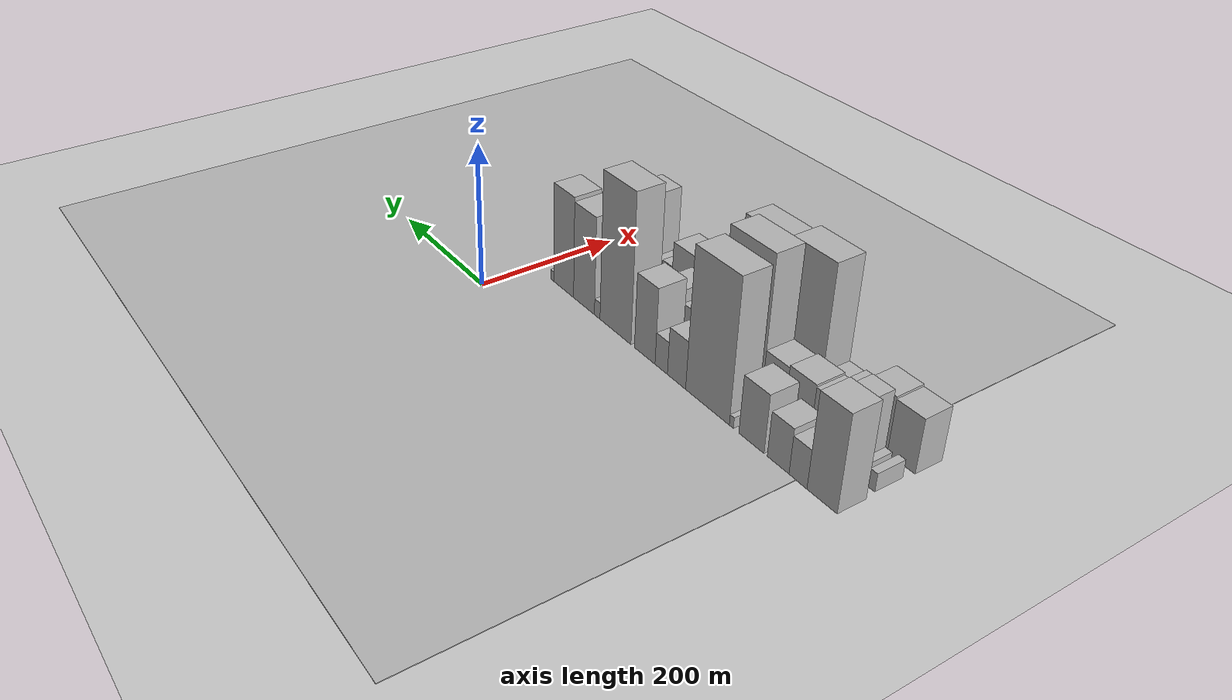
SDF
<sdf version="1.6">
 <world name="default">
  <include><name>ground_plane_1</name><uri>model://HANNAS_ground_plane</uri></include>
  <include>
   <name>ground_plane_2</name>
   <uri>model://HANNAS_ground_plane</uri>
   <pose>100 0 0  0 0 0</pose>
  </include>
  <model name="building_1">
   <static>1</static>
   <pose>100.0000 -538.0653 0 0.000000 0.000000 0.000000</pose>
   <link name="link">
    <pose>0 0 63.00 0 0 0</pose>
    <collision name="collision"><geometry><box><size>40.0000 43.8694 126.0000</size></box></geometry></collision>
    <visual name="visual">
     <cast_shadows>0</cast_shadows>
     <geometry><box><size>40.0000 43.8694 126.0000</size></box></geometry>
     <material>
      <script>
       <uri>model://HANNAS_wall/materials/scripts</uri>
       <uri>model://HANNAS_wall/materials/textures</uri>
       <name>vrc/HANNAS_wall</name>
      </script>
     </material>
    </visual>
   </link>
  </model>
  <model name="building_2">
   <static>1</static>
   <pose>100.0000 -502.6067 0 0.000000 0.000000 0.000000</pose>
   <link name="link">
    <pose>0 0 25.50 0 0 0</pose>
    <collision name="collision"><geometry><box><size>40.0000 27.0477 51.0000</size></box></geometry></collision>
    <visual name="visual">
     <cast_shadows>0</cast_shadows>
     <geometry><box><size>40.0000 27.0477 51.0000</size></box></geometry>
     <material>
      <script>
       <uri>model://HANNAS_wall/materials/scripts</uri>
       <uri>model://HANNAS_wall/materials/textures</uri>
       <name>vrc/HANNAS_wall</name>
      </script>
     </material>
    </visual>
   </link>
  </model>
  <model name="building_3">
   <static>1</static>
   <pose>100.0000 -472.1858 0 0.000000 0.000000 0.000000</pose>
   <link name="link">
    <pose>0 0 30.00 0 0 0</pose>
    <collision name="collision"><geometry><box><size>40.0000 33.7942 60.0000</size></box></geometry></collision>
    <visual name="visual">
     <cast_shadows>0</cast_shadows>
     <geometry><box><size>40.0000 33.7942 60.0000</size></box></geometry>
     <material>
      <script>
       <uri>model://HANNAS_wall/materials/scripts</uri>
       <uri>model://HANNAS_wall/materials/textures</uri>
       <name>vrc/HANNAS_wall</name>
      </script>
     </material>
    </visual>
   </link>
  </model>
  <model name="building_4">
   <static>1</static>
   <pose>100.0000 -429.7920 0 0.000000 0.000000 0.000000</pose>
   <link name="link">
    <pose>0 0 39.00 0 0 0</pose>
    <collision name="collision"><geometry><box><size>40.0000 40.9933 78.0000</size></box></geometry></collision>
    <visual name="visual">
     <cast_shadows>0</cast_shadows>
     <geometry><box><size>40.0000 40.9933 78.0000</size></box></geometry>
     <material>
      <script>
       <uri>model://HANNAS_wall/materials/scripts</uri>
       <uri>model://HANNAS_wall/materials/textures</uri>
       <name>vrc/HANNAS_wall</name>
      </script>
     </material>
    </visual>
   </link>
  </model>
  <model name="building_5">
   <static>1</static>
   <pose>100.0000 -396.8472 0 0.000000 0.000000 0.000000</pose>
   <link name="link">
    <pose>0 0 7.50 0 0 0</pose>
    <collision name="collision"><geometry><box><size>40.0000 6.8963 15.0000</size></box></geometry></collision>
    <visual name="visual">
     <cast_shadows>0</cast_shadows>
     <geometry><box><size>40.0000 6.8963 15.0000</size></box></geometry>
     <material>
      <script>
       <uri>model://HANNAS_wall/materials/scripts</uri>
       <uri>model://HANNAS_wall/materials/textures</uri>
       <name>vrc/HANNAS_wall</name>
      </script>
     </material>
    </visual>
   </link>
  </model>
  <model name="building_6">
   <static>1</static>
   <pose>100.0000 -355.0737 0 0.000000 0.000000 0.000000</pose>
   <link name="link">
    <pose>0 0 96.00 0 0 0</pose>
    <collision name="collision"><geometry><box><size>40.0000 76.6506 192.0000</size></box></geometry></collision>
    <visual name="visual">
     <cast_shadows>0</cast_shadows>
     <geometry><box><size>40.0000 76.6506 192.0000</size></box></geometry>
     <material>
      <script>
       <uri>model://HANNAS_wall/materials/scripts</uri>
       <uri>model://HANNAS_wall/materials/textures</uri>
       <name>vrc/HANNAS_wall</name>
      </script>
     </material>
    </visual>
   </link>
  </model>
  <model name="building_7">
   <static>1</static>
   <pose>100.0000 -299.8368 0 0.000000 0.000000 0.000000</pose>
   <link name="link">
    <pose>0 0 33.00 0 0 0</pose>
    <collision name="collision"><geometry><box><size>40.0000 33.8232 66.0000</size></box></geometry></collision>
    <visual name="visual">
     <cast_shadows>0</cast_shadows>
     <geometry><box><size>40.0000 33.8232 66.0000</size></box></geometry>
     <material>
      <script>
       <uri>model://HANNAS_wall/materials/scripts</uri>
       <uri>model://HANNAS_wall/materials/textures</uri>
       <name>vrc/HANNAS_wall</name>
      </script>
     </material>
    </visual>
   </link>
  </model>
  <model name="building_8">
   <static>1</static>
   <pose>100.0000 -271.1607 0 0.000000 0.000000 0.000000</pose>
   <link name="link">
    <pose>0 0 22.50 0 0 0</pose>
    <collision name="collision"><geometry><box><size>40.0000 23.5292 45.0000</size></box></geometry></collision>
    <visual name="visual">
     <cast_shadows>0</cast_shadows>
     <geometry><box><size>40.0000 23.5292 45.0000</size></box></geometry>
     <material>
      <script>
       <uri>model://HANNAS_wall/materials/scripts</uri>
       <uri>model://HANNAS_wall/materials/textures</uri>
       <name>vrc/HANNAS_wall</name>
      </script>
     </material>
    </visual>
   </link>
  </model>
  <model name="building_9">
   <static>1</static>
   <pose>100.0000 -239.2058 0 0.000000 0.000000 0.000000</pose>
   <link name="link">
    <pose>0 0 52.50 0 0 0</pose>
    <collision name="collision"><geometry><box><size>40.0000 40.3806 105.0000</size></box></geometry></collision>
    <visual name="visual">
     <cast_shadows>0</cast_shadows>
     <geometry><box><size>40.0000 40.3806 105.0000</size></box></geometry>
     <material>
      <script>
       <uri>model://HANNAS_wall/materials/scripts</uri>
       <uri>model://HANNAS_wall/materials/textures</uri>
       <name>vrc/HANNAS_wall</name>
      </script>
     </material>
    </visual>
   </link>
  </model>
  <model name="building_10">
   <static>1</static>
   <pose>100.0000 -179.8316 0 0.000000 0.000000 0.000000</pose>
   <link name="link">
    <pose>0 0 103.50 0 0 0</pose>
    <collision name="collision"><geometry><box><size>40.0000 64.3677 207.0000</size></box></geometry></collision>
    <visual name="visual">
     <cast_shadows>0</cast_shadows>
     <geometry><box><size>40.0000 64.3677 207.0000</size></box></geometry>
     <material>
      <script>
       <uri>model://HANNAS_wall/materials/scripts</uri>
       <uri>model://HANNAS_wall/materials/textures</uri>
       <name>vrc/HANNAS_wall</name>
      </script>
     </material>
    </visual>
   </link>
  </model>
  <model name="building_11">
   <static>1</static>
   <pose>100.0000 -141.6999 0 0.000000 0.000000 0.000000</pose>
   <link name="link">
    <pose>0 0 12.00 0 0 0</pose>
    <collision name="collision"><geometry><box><size>40.0000 11.8957 24.0000</size></box></geometry></collision>
    <visual name="visual">
     <cast_shadows>0</cast_shadows>
     <geometry><box><size>40.0000 11.8957 24.0000</size></box></geometry>
     <material>
      <script>
       <uri>model://HANNAS_wall/materials/scripts</uri>
       <uri>model://HANNAS_wall/materials/textures</uri>
       <name>vrc/HANNAS_wall</name>
      </script>
     </material>
    </visual>
   </link>
  </model>
  <model name="building_12">
   <static>1</static>
   <pose>100.0000 -112.7163 0 0.000000 0.000000 0.000000</pose>
   <link name="link">
    <pose>0 0 69.00 0 0 0</pose>
    <collision name="collision"><geometry><box><size>40.0000 46.0715 138.0000</size></box></geometry></collision>
    <visual name="visual">
     <cast_shadows>0</cast_shadows>
     <geometry><box><size>40.0000 46.0715 138.0000</size></box></geometry>
     <material>
      <script>
       <uri>model://HANNAS_wall/materials/scripts</uri>
       <uri>model://HANNAS_wall/materials/textures</uri>
       <name>vrc/HANNAS_wall</name>
      </script>
     </material>
    </visual>
   </link>
  </model>
  <model name="building_13">
   <static>1</static>
   <pose>100.0000 -67.0295 0 0.000000 0.000000 0.000000</pose>
   <link name="link">
    <pose>0 0 72.00 0 0 0</pose>
    <collision name="collision"><geometry><box><size>40.0000 45.3021 144.0000</size></box></geometry></collision>
    <visual name="visual">
     <cast_shadows>0</cast_shadows>
     <geometry><box><size>40.0000 45.3021 144.0000</size></box></geometry>
     <material>
      <script>
       <uri>model://HANNAS_wall/materials/scripts</uri>
       <uri>model://HANNAS_wall/materials/textures</uri>
       <name>vrc/HANNAS_wall</name>
      </script>
     </material>
    </visual>
   </link>
  </model>
  <model name="building_14">
   <static>1</static>
   <pose>100.0000 -40.6850 0 0.000000 0.000000 0.000000</pose>
   <link name="link">
    <pose>0 0 7.50 0 0 0</pose>
    <collision name="collision"><geometry><box><size>40.0000 7.3868 15.0000</size></box></geometry></collision>
    <visual name="visual">
     <cast_shadows>0</cast_shadows>
     <geometry><box><size>40.0000 7.3868 15.0000</size></box></geometry>
     <material>
      <script>
       <uri>model://HANNAS_wall/materials/scripts</uri>
       <uri>model://HANNAS_wall/materials/textures</uri>
       <name>vrc/HANNAS_wall</name>
      </script>
     </material>
    </visual>
   </link>
  </model>
  <model name="building_35">
   <static>1</static>
   <pose>155.0000 -551.8462 0 0.000000 0.000000 0.000000</pose>
   <link name="link">
    <pose>0 0 12.00 0 0 0</pose>
    <collision name="collision"><geometry><box><size>40.0000 10.3077 24.0000</size></box></geometry></collision>
    <visual name="visual">
     <cast_shadows>0</cast_shadows>
     <geometry><box><size>40.0000 10.3077 24.0000</size></box></geometry>
     <material>
      <script>
       <uri>model://HANNAS_wall/materials/scripts</uri>
       <uri>model://HANNAS_wall/materials/textures</uri>
       <name>vrc/HANNAS_wall</name>
      </script>
     </material>
    </visual>
   </link>
  </model>
  <model name="building_36">
   <static>1</static>
   <pose>155.0000 -533.7360 0 0.000000 0.000000 0.000000</pose>
   <link name="link">
    <pose>0 0 10.50 0 0 0</pose>
    <collision name="collision"><geometry><box><size>40.0000 9.9126 21.0000</size></box></geometry></collision>
    <visual name="visual">
     <cast_shadows>0</cast_shadows>
     <geometry><box><size>40.0000 9.9126 21.0000</size></box></geometry>
     <material>
      <script>
       <uri>model://HANNAS_wall/materials/scripts</uri>
       <uri>model://HANNAS_wall/materials/textures</uri>
       <name>vrc/HANNAS_wall</name>
      </script>
     </material>
    </visual>
   </link>
  </model>
  <model name="building_37">
   <static>1</static>
   <pose>155.0000 -513.0303 0 0.000000 0.000000 0.000000</pose>
   <link name="link">
    <pose>0 0 48.00 0 0 0</pose>
    <collision name="collision"><geometry><box><size>40.0000 31.4988 96.0000</size></box></geometry></collision>
    <visual name="visual">
     <cast_shadows>0</cast_shadows>
     <geometry><box><size>40.0000 31.4988 96.0000</size></box></geometry>
     <material>
      <script>
       <uri>model://HANNAS_wall/materials/scripts</uri>
       <uri>model://HANNAS_wall/materials/textures</uri>
       <name>vrc/HANNAS_wall</name>
      </script>
     </material>
    </visual>
   </link>
  </model>
  <model name="building_38">
   <static>1</static>
   <pose>155.0000 -479.1064 0 0.000000 0.000000 0.000000</pose>
   <link name="link">
    <pose>0 0 36.00 0 0 0</pose>
    <collision name="collision"><geometry><box><size>40.0000 36.3490 72.0000</size></box></geometry></collision>
    <visual name="visual">
     <cast_shadows>0</cast_shadows>
     <geometry><box><size>40.0000 36.3490 72.0000</size></box></geometry>
     <material>
      <script>
       <uri>model://HANNAS_wall/materials/scripts</uri>
       <uri>model://HANNAS_wall/materials/textures</uri>
       <name>vrc/HANNAS_wall</name>
      </script>
     </material>
    </visual>
   </link>
  </model>
  <model name="building_39">
   <static>1</static>
   <pose>155.0000 -440.3385 0 0.000000 0.000000 0.000000</pose>
   <link name="link">
    <pose>0 0 37.50 0 0 0</pose>
    <collision name="collision"><geometry><box><size>40.0000 41.1868 75.0000</size></box></geometry></collision>
    <visual name="visual">
     <cast_shadows>0</cast_shadows>
     <geometry><box><size>40.0000 41.1868 75.0000</size></box></geometry>
     <material>
      <script>
       <uri>model://HANNAS_wall/materials/scripts</uri>
       <uri>model://HANNAS_wall/materials/textures</uri>
       <name>vrc/HANNAS_wall</name>
      </script>
     </material>
    </visual>
   </link>
  </model>
  <model name="building_40">
   <static>1</static>
   <pose>155.0000 -400.9621 0 0.000000 0.000000 0.000000</pose>
   <link name="link">
    <pose>0 0 36.00 0 0 0</pose>
    <collision name="collision"><geometry><box><size>40.0000 37.5661 72.0000</size></box></geometry></collision>
    <visual name="visual">
     <cast_shadows>0</cast_shadows>
     <geometry><box><size>40.0000 37.5661 72.0000</size></box></geometry>
     <material>
      <script>
       <uri>model://HANNAS_wall/materials/scripts</uri>
       <uri>model://HANNAS_wall/materials/textures</uri>
       <name>vrc/HANNAS_wall</name>
      </script>
     </material>
    </visual>
   </link>
  </model>
  <model name="building_41">
   <static>1</static>
   <pose>155.0000 -345.1569 0 0.000000 0.000000 0.000000</pose>
   <link name="link">
    <pose>0 0 97.50 0 0 0</pose>
    <collision name="collision"><geometry><box><size>40.0000 74.0444 195.0000</size></box></geometry></collision>
    <visual name="visual">
     <cast_shadows>0</cast_shadows>
     <geometry><box><size>40.0000 74.0444 195.0000</size></box></geometry>
     <material>
      <script>
       <uri>model://HANNAS_wall/materials/scripts</uri>
       <uri>model://HANNAS_wall/materials/textures</uri>
       <name>vrc/HANNAS_wall</name>
      </script>
     </material>
    </visual>
   </link>
  </model>
  <model name="building_42">
   <static>1</static>
   <pose>155.0000 -287.4145 0 0.000000 0.000000 0.000000</pose>
   <link name="link">
    <pose>0 0 37.50 0 0 0</pose>
    <collision name="collision"><geometry><box><size>40.0000 41.4403 75.0000</size></box></geometry></collision>
    <visual name="visual">
     <cast_shadows>0</cast_shadows>
     <geometry><box><size>40.0000 41.4403 75.0000</size></box></geometry>
     <material>
      <script>
       <uri>model://HANNAS_wall/materials/scripts</uri>
       <uri>model://HANNAS_wall/materials/textures</uri>
       <name>vrc/HANNAS_wall</name>
      </script>
     </material>
    </visual>
   </link>
  </model>
  <model name="building_43">
   <static>1</static>
   <pose>155.0000 -252.5107 0 0.000000 0.000000 0.000000</pose>
   <link name="link">
    <pose>0 0 27.00 0 0 0</pose>
    <collision name="collision"><geometry><box><size>40.0000 28.3674 54.0000</size></box></geometry></collision>
    <visual name="visual">
     <cast_shadows>0</cast_shadows>
     <geometry><box><size>40.0000 28.3674 54.0000</size></box></geometry>
     <material>
      <script>
       <uri>model://HANNAS_wall/materials/scripts</uri>
       <uri>model://HANNAS_wall/materials/textures</uri>
       <name>vrc/HANNAS_wall</name>
      </script>
     </material>
    </visual>
   </link>
  </model>
  <model name="building_44">
   <static>1</static>
   <pose>155.0000 -220.3264 0 0.000000 0.000000 0.000000</pose>
   <link name="link">
    <pose>0 0 36.00 0 0 0</pose>
    <collision name="collision"><geometry><box><size>40.0000 36.0011 72.0000</size></box></geometry></collision>
    <visual name="visual">
     <cast_shadows>0</cast_shadows>
     <geometry><box><size>40.0000 36.0011 72.0000</size></box></geometry>
     <material>
      <script>
       <uri>model://HANNAS_wall/materials/scripts</uri>
       <uri>model://HANNAS_wall/materials/textures</uri>
       <name>vrc/HANNAS_wall</name>
      </script>
     </material>
    </visual>
   </link>
  </model>
  <model name="building_45">
   <static>1</static>
   <pose>155.0000 -191.4510 0 0.000000 0.000000 0.000000</pose>
   <link name="link">
    <pose>0 0 19.50 0 0 0</pose>
    <collision name="collision"><geometry><box><size>40.0000 21.7497 39.0000</size></box></geometry></collision>
    <visual name="visual">
     <cast_shadows>0</cast_shadows>
     <geometry><box><size>40.0000 21.7497 39.0000</size></box></geometry>
     <material>
      <script>
       <uri>model://HANNAS_wall/materials/scripts</uri>
       <uri>model://HANNAS_wall/materials/textures</uri>
       <name>vrc/HANNAS_wall</name>
      </script>
     </material>
    </visual>
   </link>
  </model>
  <model name="building_46">
   <static>1</static>
   <pose>155.0000 -164.6958 0 0.000000 0.000000 0.000000</pose>
   <link name="link">
    <pose>0 0 22.50 0 0 0</pose>
    <collision name="collision"><geometry><box><size>40.0000 25.7607 45.0000</size></box></geometry></collision>
    <visual name="visual">
     <cast_shadows>0</cast_shadows>
     <geometry><box><size>40.0000 25.7607 45.0000</size></box></geometry>
     <material>
      <script>
       <uri>model://HANNAS_wall/materials/scripts</uri>
       <uri>model://HANNAS_wall/materials/textures</uri>
       <name>vrc/HANNAS_wall</name>
      </script>
     </material>
    </visual>
   </link>
  </model>
  <model name="building_47">
   <static>1</static>
   <pose>155.0000 -140.7426 0 0.000000 0.000000 0.000000</pose>
   <link name="link">
    <pose>0 0 21.00 0 0 0</pose>
    <collision name="collision"><geometry><box><size>40.0000 22.1457 42.0000</size></box></geometry></collision>
    <visual name="visual">
     <cast_shadows>0</cast_shadows>
     <geometry><box><size>40.0000 22.1457 42.0000</size></box></geometry>
     <material>
      <script>
       <uri>model://HANNAS_wall/materials/scripts</uri>
       <uri>model://HANNAS_wall/materials/textures</uri>
       <name>vrc/HANNAS_wall</name>
      </script>
     </material>
    </visual>
   </link>
  </model>
  <model name="building_48">
   <static>1</static>
   <pose>155.0000 -106.2939 0 0.000000 0.000000 0.000000</pose>
   <link name="link">
    <pose>0 0 66.00 0 0 0</pose>
    <collision name="collision"><geometry><box><size>40.0000 46.7518 132.0000</size></box></geometry></collision>
    <visual name="visual">
     <cast_shadows>0</cast_shadows>
     <geometry><box><size>40.0000 46.7518 132.0000</size></box></geometry>
     <material>
      <script>
       <uri>model://HANNAS_wall/materials/scripts</uri>
       <uri>model://HANNAS_wall/materials/textures</uri>
       <name>vrc/HANNAS_wall</name>
      </script>
     </material>
    </visual>
   </link>
  </model>
  <model name="building_49">
   <static>1</static>
   <pose>155.0000 -59.1420 0 0.000000 0.000000 0.000000</pose>
   <link name="link">
    <pose>0 0 43.50 0 0 0</pose>
    <collision name="collision"><geometry><box><size>40.0000 47.5520 87.0000</size></box></geometry></collision>
    <visual name="visual">
     <cast_shadows>0</cast_shadows>
     <geometry><box><size>40.0000 47.5520 87.0000</size></box></geometry>
     <material>
      <script>
       <uri>model://HANNAS_wall/materials/scripts</uri>
       <uri>model://HANNAS_wall/materials/textures</uri>
       <name>vrc/HANNAS_wall</name>
      </script>
     </material>
    </visual>
   </link>
  </model>
  <model name="building_50">
   <static>1</static>
   <pose>155.0000 -22.7930 0 0.000000 0.000000 0.000000</pose>
   <link name="link">
    <pose>0 0 22.50 0 0 0</pose>
    <collision name="collision"><geometry><box><size>40.0000 25.1459 45.0000</size></box></geometry></collision>
    <visual name="visual">
     <cast_shadows>0</cast_shadows>
     <geometry><box><size>40.0000 25.1459 45.0000</size></box></geometry>
     <material>
      <script>
       <uri>model://HANNAS_wall/materials/scripts</uri>
       <uri>model://HANNAS_wall/materials/textures</uri>
       <name>vrc/HANNAS_wall</name>
      </script>
     </material>
    </visual>
   </link>
  </model>
  <model name="building_51">
   <static>1</static>
   <pose>155.0000 -1.5089 0 0.000000 0.000000 0.000000</pose>
   <link name="link">
    <pose>0 0 15.00 0 0 0</pose>
    <collision name="collision"><geometry><box><size>40.0000 17.4223 30.0000</size></box></geometry></collision>
    <visual name="visual">
     <cast_shadows>0</cast_shadows>
     <geometry><box><size>40.0000 17.4223 30.0000</size></box></geometry>
     <material>
      <script>
       <uri>model://HANNAS_wall/materials/scripts</uri>
       <uri>model://HANNAS_wall/materials/textures</uri>
       <name>vrc/HANNAS_wall</name>
      </script>
     </material>
    </visual>
   </link>
  </model>
  <model name="building_66">
   <static>1</static>
   <pose>210.0000 -540.2612 0 0.000000 0.000000 0.000000</pose>
   <link name="link">
    <pose>0 0 36.00 0 0 0</pose>
    <collision name="collision"><geometry><box><size>40.0000 39.4776 72.0000</size></box></geometry></collision>
    <visual name="visual">
     <cast_shadows>0</cast_shadows>
     <geometry><box><size>40.0000 39.4776 72.0000</size></box></geometry>
     <material>
      <script>
       <uri>model://HANNAS_wall/materials/scripts</uri>
       <uri>model://HANNAS_wall/materials/textures</uri>
       <name>vrc/HANNAS_wall</name>
      </script>
     </material>
    </visual>
   </link>
  </model>
  <model name="building_67">
   <static>1</static>
   <pose>210.0000 -500.9302 0 0.000000 0.000000 0.000000</pose>
   <link name="link">
    <pose>0 0 37.50 0 0 0</pose>
    <collision name="collision"><geometry><box><size>40.0000 39.1845 75.0000</size></box></geometry></collision>
    <visual name="visual">
     <cast_shadows>0</cast_shadows>
     <geometry><box><size>40.0000 39.1845 75.0000</size></box></geometry>
     <material>
      <script>
       <uri>model://HANNAS_wall/materials/scripts</uri>
       <uri>model://HANNAS_wall/materials/textures</uri>
       <name>vrc/HANNAS_wall</name>
      </script>
     </material>
    </visual>
   </link>
  </model>
  <model name="building_68">
   <static>1</static>
   <pose>210.0000 -476.1418 0 0.000000 0.000000 0.000000</pose>
   <link name="link">
    <pose>0 0 10.50 0 0 0</pose>
    <collision name="collision"><geometry><box><size>40.0000 10.3924 21.0000</size></box></geometry></collision>
    <visual name="visual">
     <cast_shadows>0</cast_shadows>
     <geometry><box><size>40.0000 10.3924 21.0000</size></box></geometry>
     <material>
      <script>
       <uri>model://HANNAS_wall/materials/scripts</uri>
       <uri>model://HANNAS_wall/materials/textures</uri>
       <name>vrc/HANNAS_wall</name>
      </script>
     </material>
    </visual>
   </link>
  </model>
  <model name="building_69">
   <static>1</static>
   <pose>210.0000 -454.9557 0 0.000000 0.000000 0.000000</pose>
   <link name="link">
    <pose>0 0 22.50 0 0 0</pose>
    <collision name="collision"><geometry><box><size>40.0000 25.9798 45.0000</size></box></geometry></collision>
    <visual name="visual">
     <cast_shadows>0</cast_shadows>
     <geometry><box><size>40.0000 25.9798 45.0000</size></box></geometry>
     <material>
      <script>
       <uri>model://HANNAS_wall/materials/scripts</uri>
       <uri>model://HANNAS_wall/materials/textures</uri>
       <name>vrc/HANNAS_wall</name>
      </script>
     </material>
    </visual>
   </link>
  </model>
  <model name="building_70">
   <static>1</static>
   <pose>210.0000 -429.4391 0 0.000000 0.000000 0.000000</pose>
   <link name="link">
    <pose>0 0 21.00 0 0 0</pose>
    <collision name="collision"><geometry><box><size>40.0000 25.0533 42.0000</size></box></geometry></collision>
    <visual name="visual">
     <cast_shadows>0</cast_shadows>
     <geometry><box><size>40.0000 25.0533 42.0000</size></box></geometry>
     <material>
      <script>
       <uri>model://HANNAS_wall/materials/scripts</uri>
       <uri>model://HANNAS_wall/materials/textures</uri>
       <name>vrc/HANNAS_wall</name>
      </script>
     </material>
    </visual>
   </link>
  </model>
  <model name="building_71">
   <static>1</static>
   <pose>210.0000 -382.7903 0 0.000000 0.000000 0.000000</pose>
   <link name="link">
    <pose>0 0 91.50 0 0 0</pose>
    <collision name="collision"><geometry><box><size>40.0000 68.2444 183.0000</size></box></geometry></collision>
    <visual name="visual">
     <cast_shadows>0</cast_shadows>
     <geometry><box><size>40.0000 68.2444 183.0000</size></box></geometry>
     <material>
      <script>
       <uri>model://HANNAS_wall/materials/scripts</uri>
       <uri>model://HANNAS_wall/materials/textures</uri>
       <name>vrc/HANNAS_wall</name>
      </script>
     </material>
    </visual>
   </link>
  </model>
  <model name="building_72">
   <static>1</static>
   <pose>210.0000 -344.5734 0 0.000000 0.000000 0.000000</pose>
   <link name="link">
    <pose>0 0 9.00 0 0 0</pose>
    <collision name="collision"><geometry><box><size>40.0000 8.1895 18.0000</size></box></geometry></collision>
    <visual name="visual">
     <cast_shadows>0</cast_shadows>
     <geometry><box><size>40.0000 8.1895 18.0000</size></box></geometry>
     <material>
      <script>
       <uri>model://HANNAS_wall/materials/scripts</uri>
       <uri>model://HANNAS_wall/materials/textures</uri>
       <name>vrc/HANNAS_wall</name>
      </script>
     </material>
    </visual>
   </link>
  </model>
  <model name="building_73">
   <static>1</static>
   <pose>210.0000 -305.7574 0 0.000000 0.000000 0.000000</pose>
   <link name="link">
    <pose>0 0 87.00 0 0 0</pose>
    <collision name="collision"><geometry><box><size>40.0000 69.4425 174.0000</size></box></geometry></collision>
    <visual name="visual">
     <cast_shadows>0</cast_shadows>
     <geometry><box><size>40.0000 69.4425 174.0000</size></box></geometry>
     <material>
      <script>
       <uri>model://HANNAS_wall/materials/scripts</uri>
       <uri>model://HANNAS_wall/materials/textures</uri>
       <name>vrc/HANNAS_wall</name>
      </script>
     </material>
    </visual>
   </link>
  </model>
  <model name="building_74">
   <static>1</static>
   <pose>210.0000 -252.0062 0 0.000000 0.000000 0.000000</pose>
   <link name="link">
    <pose>0 0 51.00 0 0 0</pose>
    <collision name="collision"><geometry><box><size>40.0000 38.0598 102.0000</size></box></geometry></collision>
    <visual name="visual">
     <cast_shadows>0</cast_shadows>
     <geometry><box><size>40.0000 38.0598 102.0000</size></box></geometry>
     <material>
      <script>
       <uri>model://HANNAS_wall/materials/scripts</uri>
       <uri>model://HANNAS_wall/materials/textures</uri>
       <name>vrc/HANNAS_wall</name>
      </script>
     </material>
    </visual>
   </link>
  </model>
  <model name="building_75">
   <static>1</static>
   <pose>210.0000 -213.4024 0 0.000000 0.000000 0.000000</pose>
   <link name="link">
    <pose>0 0 25.50 0 0 0</pose>
    <collision name="collision"><geometry><box><size>40.0000 27.1479 51.0000</size></box></geometry></collision>
    <visual name="visual">
     <cast_shadows>0</cast_shadows>
     <geometry><box><size>40.0000 27.1479 51.0000</size></box></geometry>
     <material>
      <script>
       <uri>model://HANNAS_wall/materials/scripts</uri>
       <uri>model://HANNAS_wall/materials/textures</uri>
       <name>vrc/HANNAS_wall</name>
      </script>
     </material>
    </visual>
   </link>
  </model>
  <model name="building_76">
   <static>1</static>
   <pose>210.0000 -195.6108 0 0.000000 0.000000 0.000000</pose>
   <link name="link">
    <pose>0 0 9.00 0 0 0</pose>
    <collision name="collision"><geometry><box><size>40.0000 8.4352 18.0000</size></box></geometry></collision>
    <visual name="visual">
     <cast_shadows>0</cast_shadows>
     <geometry><box><size>40.0000 8.4352 18.0000</size></box></geometry>
     <material>
      <script>
       <uri>model://HANNAS_wall/materials/scripts</uri>
       <uri>model://HANNAS_wall/materials/textures</uri>
       <name>vrc/HANNAS_wall</name>
      </script>
     </material>
    </visual>
   </link>
  </model>
  <model name="building_77">
   <static>1</static>
   <pose>210.0000 -169.4008 0 0.000000 0.000000 0.000000</pose>
   <link name="link">
    <pose>0 0 37.50 0 0 0</pose>
    <collision name="collision"><geometry><box><size>40.0000 43.9848 75.0000</size></box></geometry></collision>
    <visual name="visual">
     <cast_shadows>0</cast_shadows>
     <geometry><box><size>40.0000 43.9848 75.0000</size></box></geometry>
     <material>
      <script>
       <uri>model://HANNAS_wall/materials/scripts</uri>
       <uri>model://HANNAS_wall/materials/textures</uri>
       <name>vrc/HANNAS_wall</name>
      </script>
     </material>
    </visual>
   </link>
  </model>
  <model name="building_78">
   <static>1</static>
   <pose>210.0000 -137.3913 0 0.000000 0.000000 0.000000</pose>
   <link name="link">
    <pose>0 0 19.50 0 0 0</pose>
    <collision name="collision"><geometry><box><size>40.0000 20.0341 39.0000</size></box></geometry></collision>
    <visual name="visual">
     <cast_shadows>0</cast_shadows>
     <geometry><box><size>40.0000 20.0341 39.0000</size></box></geometry>
     <material>
      <script>
       <uri>model://HANNAS_wall/materials/scripts</uri>
       <uri>model://HANNAS_wall/materials/textures</uri>
       <name>vrc/HANNAS_wall</name>
      </script>
     </material>
    </visual>
   </link>
  </model>
  <model name="building_79">
   <static>1</static>
   <pose>210.0000 -117.5936 0 0.000000 0.000000 0.000000</pose>
   <link name="link">
    <pose>0 0 16.50 0 0 0</pose>
    <collision name="collision"><geometry><box><size>40.0000 19.5613 33.0000</size></box></geometry></collision>
    <visual name="visual">
     <cast_shadows>0</cast_shadows>
     <geometry><box><size>40.0000 19.5613 33.0000</size></box></geometry>
     <material>
      <script>
       <uri>model://HANNAS_wall/materials/scripts</uri>
       <uri>model://HANNAS_wall/materials/textures</uri>
       <name>vrc/HANNAS_wall</name>
      </script>
     </material>
    </visual>
   </link>
  </model>
  <model name="building_80">
   <static>1</static>
   <pose>210.0000 -87.6925 0 0.000000 0.000000 0.000000</pose>
   <link name="link">
    <pose>0 0 61.50 0 0 0</pose>
    <collision name="collision"><geometry><box><size>40.0000 40.2410 123.0000</size></box></geometry></collision>
    <visual name="visual">
     <cast_shadows>0</cast_shadows>
     <geometry><box><size>40.0000 40.2410 123.0000</size></box></geometry>
     <material>
      <script>
       <uri>model://HANNAS_wall/materials/scripts</uri>
       <uri>model://HANNAS_wall/materials/textures</uri>
       <name>vrc/HANNAS_wall</name>
      </script>
     </material>
    </visual>
   </link>
  </model>
  <model name="building_81">
   <static>1</static>
   <pose>210.0000 -60.4751 0 0.000000 0.000000 0.000000</pose>
   <link name="link">
    <pose>0 0 9.00 0 0 0</pose>
    <collision name="collision"><geometry><box><size>40.0000 8.1938 18.0000</size></box></geometry></collision>
    <visual name="visual">
     <cast_shadows>0</cast_shadows>
     <geometry><box><size>40.0000 8.1938 18.0000</size></box></geometry>
     <material>
      <script>
       <uri>model://HANNAS_wall/materials/scripts</uri>
       <uri>model://HANNAS_wall/materials/textures</uri>
       <name>vrc/HANNAS_wall</name>
      </script>
     </material>
    </visual>
   </link>
  </model>
  <model name="building_82">
   <static>1</static>
   <pose>210.0000 -36.2464 0 0.000000 0.000000 0.000000</pose>
   <link name="link">
    <pose>0 0 37.50 0 0 0</pose>
    <collision name="collision"><geometry><box><size>40.0000 40.2636 75.0000</size></box></geometry></collision>
    <visual name="visual">
     <cast_shadows>0</cast_shadows>
     <geometry><box><size>40.0000 40.2636 75.0000</size></box></geometry>
     <material>
      <script>
       <uri>model://HANNAS_wall/materials/scripts</uri>
       <uri>model://HANNAS_wall/materials/textures</uri>
       <name>vrc/HANNAS_wall</name>
      </script>
     </material>
    </visual>
   </link>
  </model>
  <model name="building_83">
   <static>1</static>
   <pose>210.0000 -2.8504 0 0.000000 0.000000 0.000000</pose>
   <link name="link">
    <pose>0 0 24.00 0 0 0</pose>
    <collision name="collision"><geometry><box><size>40.0000 26.5285 48.0000</size></box></geometry></collision>
    <visual name="visual">
     <cast_shadows>0</cast_shadows>
     <geometry><box><size>40.0000 26.5285 48.0000</size></box></geometry>
     <material>
      <script>
       <uri>model://HANNAS_wall/materials/scripts</uri>
       <uri>model://HANNAS_wall/materials/textures</uri>
       <name>vrc/HANNAS_wall</name>
      </script>
     </material>
    </visual>
   </link>
  </model>
 </world>
</sdf>
